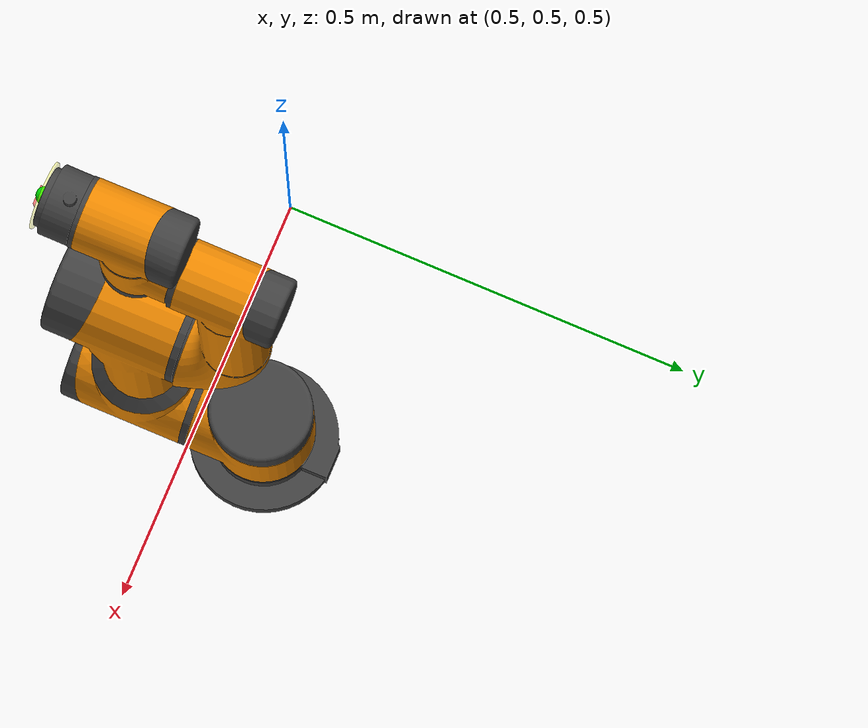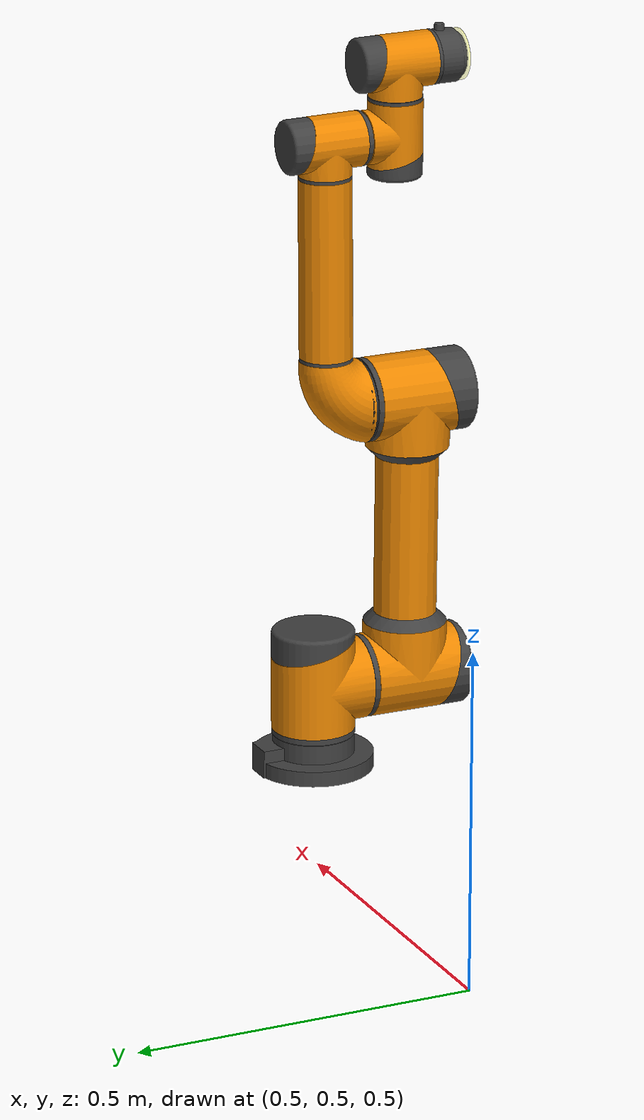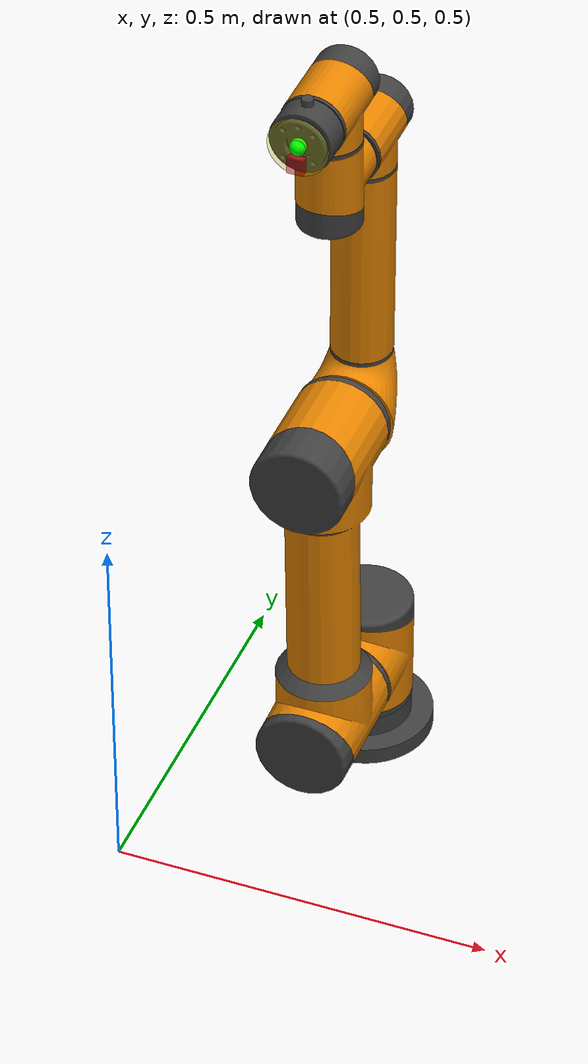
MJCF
<mujoco model="aubo_i5">
    <compiler angle="radian"/>
    <size njmax="500" nconmax="100"/>
    <default>
        <joint armature="0.2" damping="0.2" />  <!--damping="0.1"-->
        <default class="visual">
            <geom group="2" type="mesh" contype="0" conaffinity="0" density="0"/>
        </default>
        <default class="collision">
            <geom group="3" type="mesh" rgba="1 1 1 1" density="2700"/>
        </default>
    </default>

<option timestep="0.005" gravity="0 0 -9.81" integrator="implicitfast" impratio="10">
    <flag contact="enable" energy="enable" gravity="enable"/>
</option>

<visual>
    <headlight diffuse="0.6 0.6 0.6" ambient="0.1 0.1 0.1" specular="0 0 0"/>
    <rgba haze="0.15 0.25 0.35 1"/>
    <global azimuth="120" elevation="-20"/>
</visual>

<asset>
    <material name="Opaque(63,63,63)" specular="0.5" shininess="0.5" rgba="0.250980 0.250980 0.250980 1.0"/>
    <material name="Opaque(232,133,0)" specular="0.5" shininess="0.5" rgba="0.909804 0.521569 0.000000 1.0"/>

    <mesh name="link0_0" file="../Aubo_i5/meshes/visual/link0/link0_0.obj"/>
    <mesh name="link1_0" file="../Aubo_i5/meshes/visual/link1/link1_0.obj"/>
    <mesh name="link1_1" file="../Aubo_i5/meshes/visual/link1/link1_1.obj"/>
    <mesh name="link1_2" file="../Aubo_i5/meshes/visual/link1/link1_2.obj"/>
    <mesh name="link2_0" file="../Aubo_i5/meshes/visual/link2/link2_0.obj"/>
    <mesh name="link2_1" file="../Aubo_i5/meshes/visual/link2/link2_1.obj"/>
    <mesh name="link2_2" file="../Aubo_i5/meshes/visual/link2/link2_2.obj"/>
    <mesh name="link3_0" file="../Aubo_i5/meshes/visual/link3/link3_0.obj"/>
    <mesh name="link3_1" file="../Aubo_i5/meshes/visual/link3/link3_1.obj"/>
    <mesh name="link4_0" file="../Aubo_i5/meshes/visual/link4/link4_0.obj"/>
    <mesh name="link4_1" file="../Aubo_i5/meshes/visual/link4/link4_1.obj"/>
    <mesh name="link5_0" file="../Aubo_i5/meshes/visual/link5/link5_0.obj"/>
    <mesh name="link5_1" file="../Aubo_i5/meshes/visual/link5/link5_1.obj"/>
    <mesh name="link6_0" file="../Aubo_i5/meshes/visual/link6/link6_0.obj"/>

    <mesh name="link0" file="../Aubo_i5/meshes/collision/link0.STL"/>
    <mesh name="link1" file="../Aubo_i5/meshes/collision/link1.STL"/>
    <mesh name="link2" file="../Aubo_i5/meshes/collision/link2.STL"/>
    <mesh name="link3" file="../Aubo_i5/meshes/collision/link3.STL"/>
    <mesh name="link4" file="../Aubo_i5/meshes/collision/link4.STL"/>
    <mesh name="link5" file="../Aubo_i5/meshes/collision/link5.STL"/>
    <mesh name="link6" file="../Aubo_i5/meshes/collision/link6.STL"/>
</asset>

<worldbody>
    <body name="base_link" pos="0.8 0.6 0.745">
        <inertial pos="5.28033e-09 0.00159669 0.0165705" quat="0.495398 0.50456 -0.50456 0.495398" mass="1.43822" diaginertia="0.0055319 0.003103 0.0028571"/>
        <geom mesh="link0_0" pos="0 0 0" quat="180 180 0 1" material="Opaque(63,63,63)" class="visual"/>
        <geom type="mesh" rgba="1 1 1 1" mesh="link0" class="collision"/>

        <body name="shoulder_Link" pos="0 0 0.122" quat="0 0 0 1">
            <inertial pos="-1e-05 0.001807 -0.013854" quat="0.999902 -0.0139146 -0.000554021 -0.0014145" mass="4.84858" diaginertia="0.011842 0.0118029 0.00810013"/>
            <joint name="shoulder_joint" pos="0 0 0" axis="0 0 1" limited="true" range="-6.28319 6.28319" damping="8.0" frictionloss="10.0"/>
            <geom mesh="link1_0" pos="0 0 0" quat="180 180 0 1" material="Opaque(232,133,0)" class="visual"/>
            <geom mesh="link1_1" pos="0 0 0" quat="180 180 0 1" material="Opaque(63,63,63)" class="visual"/>
            <geom type="mesh" rgba="1 1 1 1" mesh="link1" class="collision"/>

            <body name="upperArm_Link" pos="0 0.1215 0" quat="0.5 -0.5 -0.5 -0.5">
                <inertial pos="0.204 0 0.006603" quat="0.500012 0.500012 0.499988 0.499988" mass="10.8363" diaginertia="0.432805 0.425155 0.026024"/>
                <joint name="upperArm_joint" pos="0 0 0" axis="0 0 1" limited="true" range="-6.28319 6.28319" damping="8.0" frictionloss="10.0"/>
                <geom mesh="link2_0" pos="0 0 0" quat="180 180 0 1" material="Opaque(232,133,0)" class="visual"/>
                <geom mesh="link2_1" pos="0 0 0" quat="180 180 0 1" material="Opaque(63,63,63)" class="visual"/>
                <geom mesh="link2_2" pos="0 0 0" quat="180 180 0 1" material="Opaque(63,63,63)" class="visual"/>
                <geom type="mesh" rgba="1 1 1 1" mesh="link2" class="collision"/>

                <body name="foreArm_Link" pos="0.408 0 0" quat="0 -1 0 0">
                    <inertial pos="0.264626 -2e-05 0.093611" quat="0.498564 0.501492 0.499882 0.500057" mass="2.84917" diaginertia="0.065327 0.0646765 0.00363354"/>
                    <joint name="foreArm_joint" pos="0 0 0" axis="0 0 1" limited="true" range="-6.28319 6.28319" damping="8.0" frictionloss="10.0"/>
                    <geom mesh="link3_0" pos="0 0 0" quat="180 180 0 1" material="Opaque(63,63,63)" class="visual"/>
                    <geom mesh="link3_1" pos="0 0 0" quat="180 180 0 1" material="Opaque(232,133,0)" class="visual"/>
                    <geom type="mesh" rgba="1 1 1 1" mesh="link3" class="collision"/>

                    <body name="wrist1_Link" pos="0.376 0 0" quat="0 0.707107 0.707107 0">
                        <inertial pos="3.8e-05 0.011278 -0.001539" quat="0.68759 0.725716 -0.0157544 0.0175555" mass="1.62802" diaginertia="0.00195105 0.00193322 0.00115172"/>
                        <joint name="wrist1_joint" pos="0 0 0" axis="0 0 1" limited="true" range="-6.28319 6.28319" damping="2.5" frictionloss="3.0"/>
                        <geom mesh="link4_0" pos="0 0 0" quat="180 180 0 1" material="Opaque(63,63,63)" class="visual"/>
                        <geom mesh="link4_1" pos="0 0 0" quat="180 180 0 1" material="Opaque(232,133,0)" class="visual"/>
                        <geom type="mesh" rgba="1 1 1 1" mesh="link4" class="collision"/>

                        <body name="wrist2_Link" pos="0 0.1025 0" quat="0.707107 -0.707107 0 0">
                            <inertial pos="-3.8e-05 -0.011278 -0.001539" quat="0.725716 0.68759 0.0175555 -0.0157544" mass="1.62802" diaginertia="0.00195105 0.00193322 0.00115172"/>
                            <joint name="wrist2_joint" pos="0 0 0" axis="0 0 1" limited="true" range="-6.28319 6.28319" damping="2.5" frictionloss="3.0"/>
                            <geom mesh="link5_0" pos="0 0 0" quat="180 180 0 1" material="Opaque(63,63,63)" class="visual"/>
                            <geom mesh="link5_1" pos="0 0 0" quat="180 180 0 1" material="Opaque(232,133,0)" class="visual"/>
                            <geom type="mesh" rgba="1 1 1 1" mesh="link5" class="collision"/>

                            <body name="wrist3_Link" pos="0 -0.094 0" quat="0.707107 0.707107 0 0">
                                <inertial pos="2.2e-05 0.0006 -0.017081" quat="0.503459 0.496517 -0.496517 0.503459" mass="0.1978" diaginertia="0.000184014 0.000118 0.000111986"/>
                                <joint name="wrist3_joint" pos="0 0 0" axis="0 0 1" limited="true" range="-6.28319 6.28319" damping="2.5" frictionloss="3.0"/>
                                <geom mesh="link6_0" pos="0 0 0" quat="180 180 0 1" material="Opaque(63,63,63)" class="visual"/>
                                <geom type="mesh" pos="0 0 0" mesh="link6" class="collision"/>

                                <body name="flange" pos="0 0 0" quat="1 0 0 0">
                                    <site name="tcp" pos="0 0 0" size="0.01" rgba="0 1 0 1"/>
                                    <site name="end_force_sensor_site" type="cylinder" size="0.036 0.001" pos="0 0 0.001" rgba="1 1 0 0.3"/>
                                    <body name="arm_camera" pos="0 -0.02 0" quat="1 0 0 0">
                                        <camera name="flange_cam" mode="fixed" pos="0 0 0" xyaxes="1 0 0 0 -1 0"/>
                                        <geom type="box" size="0.01 0.01 0.01" rgba="1 0 0 0.5" contype="0" conaffinity="0"/>
                                    </body>
                                </body>
                            </body>
                        </body>
                    </body>
                </body>
            </body>
        </body>
    </body>
</worldbody>

<actuator>
    <position ctrllimited="true" ctrlrange="-6.28 6.28" joint="shoulder_joint" name="q1" kp="30500" kv="20" gear="1"/>
    <position ctrllimited="true" ctrlrange="-6.28 6.28" joint="upperArm_joint" name="q2" kp="8500" kv="190" gear="1"/>
    <position ctrllimited="true" ctrlrange="-6.28 6.28" joint="foreArm_joint" name="q3" kp="6500" kv="99" gear="1"/>
    <position ctrllimited="true" ctrlrange="-6.28 6.28" joint="wrist1_joint" name="q4" kp="700" kv="7.3" gear="1"/>
    <position ctrllimited="true" ctrlrange="-6.28 6.28" joint="wrist2_joint" name="q5" kp="150" kv="5.0" gear="1"/>
    <position ctrllimited="true" ctrlrange="-6.28 6.28" joint="wrist3_joint" name="q6" kp="150" kv="5.0" gear="1"/>
</actuator>

<sensor>
    <force name="end_force_sensor" site="end_force_sensor_site" cutoff="50"/>
    <torque name="end_torque_sensor" site="end_force_sensor_site" cutoff="10"/>
</sensor>
</mujoco>
